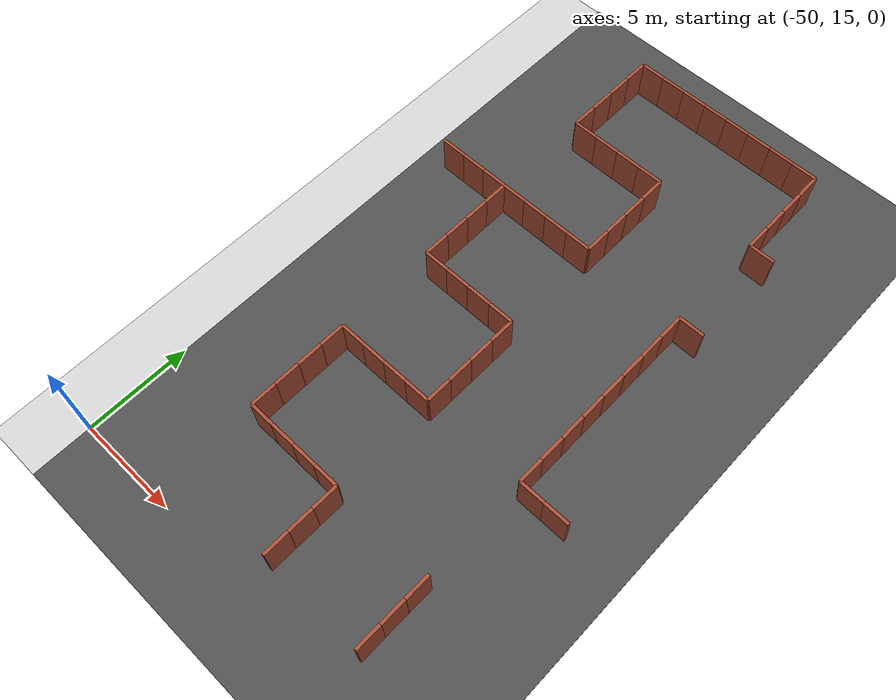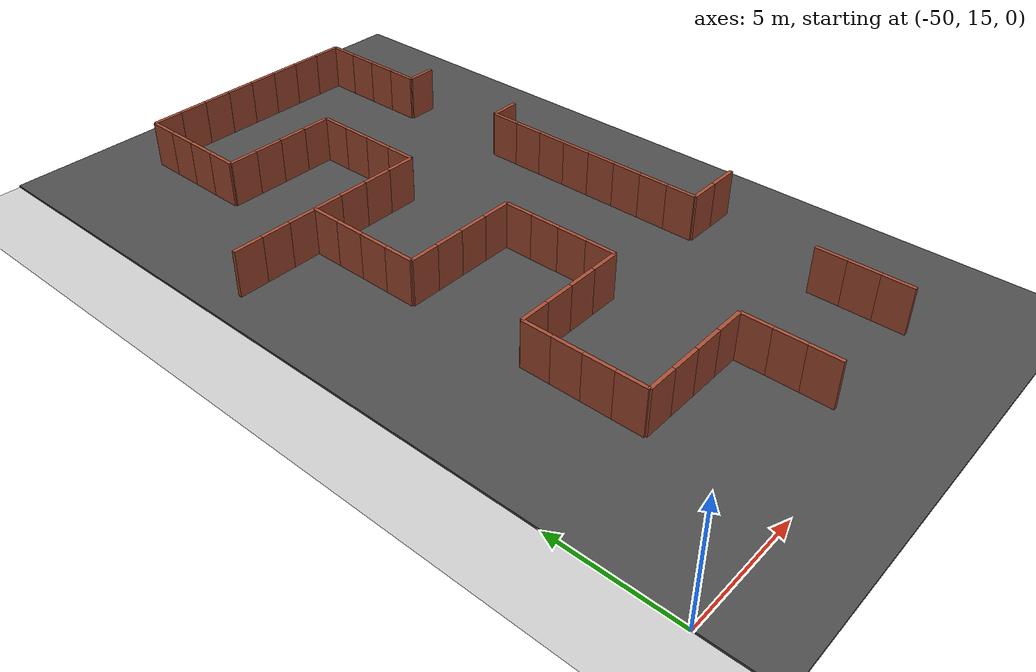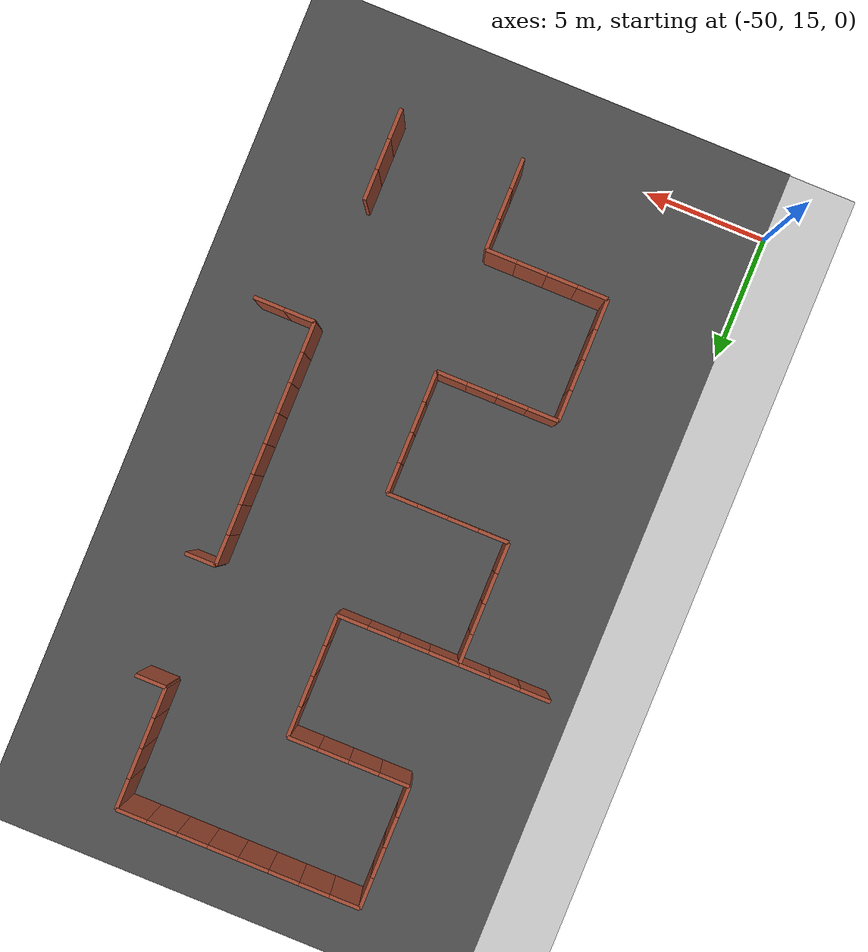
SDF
<sdf version="1.6">
 <world name="default">
  <model name="ground_plane">
   <static>1</static>
   <link name="link">
    <collision name="collision">
     <geometry><plane><normal>0 0 1</normal><size>100 100</size></plane></geometry>
     <surface><friction><ode><mu>100</mu><mu2>50</mu2></ode></friction></surface>
    </collision>
    <visual name="visual">
     <cast_shadows>0</cast_shadows>
     <geometry><plane><normal>0 0 1</normal><size>100 100</size></plane></geometry>
     <material>
      <script><uri>file://media/materials/scripts/gazebo.material</uri><name>Gazebo/Grey</name></script>
     </material>
    </visual>
   </link>
  </model>
  <model name="asphalt_plane">
   <static>1</static>
   <link name="link">
    <collision name="collision"><geometry><box><size>100 100 0.1</size></box></geometry></collision>
    <visual name="visual">
     <cast_shadows>0</cast_shadows>
     <geometry><box><size>100 100 0.1</size></box></geometry>
     <material>
      <script>
       <uri>model://asphalt_plane/materials/scripts</uri>
       <uri>model://asphalt_plane/materials/textures</uri>
       <name>vrc/asphalt</name>
      </script>
     </material>
    </visual>
   </link>
  </model>
  <model name="brick_wall_1_34_vertical1">
   <pose>-46.875 35 0 0 -0 0</pose>
   <link name="Wall_0">
    <collision name="Wall_0_Collision">
     <geometry><box><size>1.25 0.15 2</size></box></geometry>
     <pose>0 0 1 0 -0 0</pose>
    </collision>
    <visual name="Wall_0_Visual">
     <pose>0 0 1 0 -0 0</pose>
     <geometry><box><size>1.25 0.15 2</size></box></geometry>
     <material>
      <script><uri>file://media/materials/scripts/gazebo.material</uri><name>Gazebo/Bricks</name></script>
      <ambient>1 1 1 1</ambient>
     </material>
     <meta><layer>0</layer></meta>
    </visual>
   </link>
   <static>1</static>
  </model>
  <model name="brick_wall_1_34_vertical2">
   <pose>-48.125 35 0 0 -0 0</pose>
   <link name="Wall_0">
    <collision name="Wall_0_Collision">
     <geometry><box><size>1.25 0.15 2</size></box></geometry>
     <pose>0 0 1 0 -0 0</pose>
    </collision>
    <visual name="Wall_0_Visual">
     <pose>0 0 1 0 -0 0</pose>
     <geometry><box><size>1.25 0.15 2</size></box></geometry>
     <material>
      <script><uri>file://media/materials/scripts/gazebo.material</uri><name>Gazebo/Bricks</name></script>
      <ambient>1 1 1 1</ambient>
     </material>
     <meta><layer>0</layer></meta>
    </visual>
   </link>
   <static>1</static>
  </model>
  <model name="brick_wall_2_28_vertical1">
   <pose>-44.375 20 0 0 -0 0</pose>
   <link name="Wall_0">
    <collision name="Wall_0_Collision">
     <geometry><box><size>1.25 0.15 2</size></box></geometry>
     <pose>0 0 1 0 -0 0</pose>
    </collision>
    <visual name="Wall_0_Visual">
     <pose>0 0 1 0 -0 0</pose>
     <geometry><box><size>1.25 0.15 2</size></box></geometry>
     <material>
      <script><uri>file://media/materials/scripts/gazebo.material</uri><name>Gazebo/Bricks</name></script>
      <ambient>1 1 1 1</ambient>
     </material>
     <meta><layer>0</layer></meta>
    </visual>
   </link>
   <static>1</static>
  </model>
  <model name="brick_wall_2_28_horizontal1">
   <pose>-45 20.625 0 0 -0 1.5708</pose>
   <link name="Wall_0">
    <collision name="Wall_0_Collision">
     <geometry><box><size>1.25 0.15 2</size></box></geometry>
     <pose>0 0 1 0 -0 0</pose>
    </collision>
    <visual name="Wall_0_Visual">
     <pose>0 0 1 0 -0 0</pose>
     <geometry><box><size>1.25 0.15 2</size></box></geometry>
     <material>
      <script><uri>file://media/materials/scripts/gazebo.material</uri><name>Gazebo/Bricks</name></script>
      <ambient>1 1 1 1</ambient>
     </material>
     <meta><layer>0</layer></meta>
    </visual>
   </link>
   <static>1</static>
  </model>
  <model name="brick_wall_2_29_horizontal1">
   <pose>-45 23.125 0 0 -0 1.5708</pose>
   <link name="Wall_0">
    <collision name="Wall_0_Collision">
     <geometry><box><size>1.25 0.15 2</size></box></geometry>
     <pose>0 0 1 0 -0 0</pose>
    </collision>
    <visual name="Wall_0_Visual">
     <pose>0 0 1 0 -0 0</pose>
     <geometry><box><size>1.25 0.15 2</size></box></geometry>
     <material>
      <script><uri>file://media/materials/scripts/gazebo.material</uri><name>Gazebo/Bricks</name></script>
      <ambient>1 1 1 1</ambient>
     </material>
     <meta><layer>0</layer></meta>
    </visual>
   </link>
   <static>1</static>
  </model>
  <model name="brick_wall_2_29_horizontal2">
   <pose>-45 21.875 0 0 -0 1.5708</pose>
   <link name="Wall_0">
    <collision name="Wall_0_Collision">
     <geometry><box><size>1.25 0.15 2</size></box></geometry>
     <pose>0 0 1 0 -0 0</pose>
    </collision>
    <visual name="Wall_0_Visual">
     <pose>0 0 1 0 -0 0</pose>
     <geometry><box><size>1.25 0.15 2</size></box></geometry>
     <material>
      <script><uri>file://media/materials/scripts/gazebo.material</uri><name>Gazebo/Bricks</name></script>
      <ambient>1 1 1 1</ambient>
     </material>
     <meta><layer>0</layer></meta>
    </visual>
   </link>
   <static>1</static>
  </model>
  <model name="brick_wall_2_30_vertical1">
   <pose>-44.375 25 0 0 -0 0</pose>
   <link name="Wall_0">
    <collision name="Wall_0_Collision">
     <geometry><box><size>1.25 0.15 2</size></box></geometry>
     <pose>0 0 1 0 -0 0</pose>
    </collision>
    <visual name="Wall_0_Visual">
     <pose>0 0 1 0 -0 0</pose>
     <geometry><box><size>1.25 0.15 2</size></box></geometry>
     <material>
      <script><uri>file://media/materials/scripts/gazebo.material</uri><name>Gazebo/Bricks</name></script>
      <ambient>1 1 1 1</ambient>
     </material>
     <meta><layer>0</layer></meta>
    </visual>
   </link>
   <static>1</static>
  </model>
  <model name="brick_wall_2_30_horizontal2">
   <pose>-45 24.375 0 0 -0 1.5708</pose>
   <link name="Wall_0">
    <collision name="Wall_0_Collision">
     <geometry><box><size>1.25 0.15 2</size></box></geometry>
     <pose>0 0 1 0 -0 0</pose>
    </collision>
    <visual name="Wall_0_Visual">
     <pose>0 0 1 0 -0 0</pose>
     <geometry><box><size>1.25 0.15 2</size></box></geometry>
     <material>
      <script><uri>file://media/materials/scripts/gazebo.material</uri><name>Gazebo/Bricks</name></script>
      <ambient>1 1 1 1</ambient>
     </material>
     <meta><layer>0</layer></meta>
    </visual>
   </link>
   <static>1</static>
  </model>
  <model name="brick_wall_2_32_vertical1">
   <pose>-44.375 30 0 0 -0 0</pose>
   <link name="Wall_0">
    <collision name="Wall_0_Collision">
     <geometry><box><size>1.25 0.15 2</size></box></geometry>
     <pose>0 0 1 0 -0 0</pose>
    </collision>
    <visual name="Wall_0_Visual">
     <pose>0 0 1 0 -0 0</pose>
     <geometry><box><size>1.25 0.15 2</size></box></geometry>
     <material>
      <script><uri>file://media/materials/scripts/gazebo.material</uri><name>Gazebo/Bricks</name></script>
      <ambient>1 1 1 1</ambient>
     </material>
     <meta><layer>0</layer></meta>
    </visual>
   </link>
   <static>1</static>
  </model>
  <model name="brick_wall_2_32_horizontal1">
   <pose>-45 30.625 0 0 -0 1.5708</pose>
   <link name="Wall_0">
    <collision name="Wall_0_Collision">
     <geometry><box><size>1.25 0.15 2</size></box></geometry>
     <pose>0 0 1 0 -0 0</pose>
    </collision>
    <visual name="Wall_0_Visual">
     <pose>0 0 1 0 -0 0</pose>
     <geometry><box><size>1.25 0.15 2</size></box></geometry>
     <material>
      <script><uri>file://media/materials/scripts/gazebo.material</uri><name>Gazebo/Bricks</name></script>
      <ambient>1 1 1 1</ambient>
     </material>
     <meta><layer>0</layer></meta>
    </visual>
   </link>
   <static>1</static>
  </model>
  <model name="brick_wall_2_33_horizontal1">
   <pose>-45 33.125 0 0 -0 1.5708</pose>
   <link name="Wall_0">
    <collision name="Wall_0_Collision">
     <geometry><box><size>1.25 0.15 2</size></box></geometry>
     <pose>0 0 1 0 -0 0</pose>
    </collision>
    <visual name="Wall_0_Visual">
     <pose>0 0 1 0 -0 0</pose>
     <geometry><box><size>1.25 0.15 2</size></box></geometry>
     <material>
      <script><uri>file://media/materials/scripts/gazebo.material</uri><name>Gazebo/Bricks</name></script>
      <ambient>1 1 1 1</ambient>
     </material>
     <meta><layer>0</layer></meta>
    </visual>
   </link>
   <static>1</static>
  </model>
  <model name="brick_wall_2_33_horizontal2">
   <pose>-45 31.875 0 0 -0 1.5708</pose>
   <link name="Wall_0">
    <collision name="Wall_0_Collision">
     <geometry><box><size>1.25 0.15 2</size></box></geometry>
     <pose>0 0 1 0 -0 0</pose>
    </collision>
    <visual name="Wall_0_Visual">
     <pose>0 0 1 0 -0 0</pose>
     <geometry><box><size>1.25 0.15 2</size></box></geometry>
     <material>
      <script><uri>file://media/materials/scripts/gazebo.material</uri><name>Gazebo/Bricks</name></script>
      <ambient>1 1 1 1</ambient>
     </material>
     <meta><layer>0</layer></meta>
    </visual>
   </link>
   <static>1</static>
  </model>
  <model name="brick_wall_2_34_vertical1">
   <pose>-44.375 35 0 0 -0 0</pose>
   <link name="Wall_0">
    <collision name="Wall_0_Collision">
     <geometry><box><size>1.25 0.15 2</size></box></geometry>
     <pose>0 0 1 0 -0 0</pose>
    </collision>
    <visual name="Wall_0_Visual">
     <pose>0 0 1 0 -0 0</pose>
     <geometry><box><size>1.25 0.15 2</size></box></geometry>
     <material>
      <script><uri>file://media/materials/scripts/gazebo.material</uri><name>Gazebo/Bricks</name></script>
      <ambient>1 1 1 1</ambient>
     </material>
     <meta><layer>0</layer></meta>
    </visual>
   </link>
   <static>1</static>
  </model>
  <model name="brick_wall_2_34_vertical2">
   <pose>-45.625 35 0 0 -0 0</pose>
   <link name="Wall_0">
    <collision name="Wall_0_Collision">
     <geometry><box><size>1.25 0.15 2</size></box></geometry>
     <pose>0 0 1 0 -0 0</pose>
    </collision>
    <visual name="Wall_0_Visual">
     <pose>0 0 1 0 -0 0</pose>
     <geometry><box><size>1.25 0.15 2</size></box></geometry>
     <material>
      <script><uri>file://media/materials/scripts/gazebo.material</uri><name>Gazebo/Bricks</name></script>
      <ambient>1 1 1 1</ambient>
     </material>
     <meta><layer>0</layer></meta>
    </visual>
   </link>
   <static>1</static>
  </model>
  <model name="brick_wall_2_34_horizontal2">
   <pose>-45 34.375 0 0 -0 1.5708</pose>
   <link name="Wall_0">
    <collision name="Wall_0_Collision">
     <geometry><box><size>1.25 0.15 2</size></box></geometry>
     <pose>0 0 1 0 -0 0</pose>
    </collision>
    <visual name="Wall_0_Visual">
     <pose>0 0 1 0 -0 0</pose>
     <geometry><box><size>1.25 0.15 2</size></box></geometry>
     <material>
      <script><uri>file://media/materials/scripts/gazebo.material</uri><name>Gazebo/Bricks</name></script>
      <ambient>1 1 1 1</ambient>
     </material>
     <meta><layer>0</layer></meta>
    </visual>
   </link>
   <static>1</static>
  </model>
  <model name="brick_wall_2_36_vertical1">
   <pose>-44.375 40 0 0 -0 0</pose>
   <link name="Wall_0">
    <collision name="Wall_0_Collision">
     <geometry><box><size>1.25 0.15 2</size></box></geometry>
     <pose>0 0 1 0 -0 0</pose>
    </collision>
    <visual name="Wall_0_Visual">
     <pose>0 0 1 0 -0 0</pose>
     <geometry><box><size>1.25 0.15 2</size></box></geometry>
     <material>
      <script><uri>file://media/materials/scripts/gazebo.material</uri><name>Gazebo/Bricks</name></script>
      <ambient>1 1 1 1</ambient>
     </material>
     <meta><layer>0</layer></meta>
    </visual>
   </link>
   <static>1</static>
  </model>
  <model name="brick_wall_2_36_horizontal1">
   <pose>-45 40.625 0 0 -0 1.5708</pose>
   <link name="Wall_0">
    <collision name="Wall_0_Collision">
     <geometry><box><size>1.25 0.15 2</size></box></geometry>
     <pose>0 0 1 0 -0 0</pose>
    </collision>
    <visual name="Wall_0_Visual">
     <pose>0 0 1 0 -0 0</pose>
     <geometry><box><size>1.25 0.15 2</size></box></geometry>
     <material>
      <script><uri>file://media/materials/scripts/gazebo.material</uri><name>Gazebo/Bricks</name></script>
      <ambient>1 1 1 1</ambient>
     </material>
     <meta><layer>0</layer></meta>
    </visual>
   </link>
   <static>1</static>
  </model>
  <model name="brick_wall_2_37_horizontal1">
   <pose>-45 43.125 0 0 -0 1.5708</pose>
   <link name="Wall_0">
    <collision name="Wall_0_Collision">
     <geometry><box><size>1.25 0.15 2</size></box></geometry>
     <pose>0 0 1 0 -0 0</pose>
    </collision>
    <visual name="Wall_0_Visual">
     <pose>0 0 1 0 -0 0</pose>
     <geometry><box><size>1.25 0.15 2</size></box></geometry>
     <material>
      <script><uri>file://media/materials/scripts/gazebo.material</uri><name>Gazebo/Bricks</name></script>
      <ambient>1 1 1 1</ambient>
     </material>
     <meta><layer>0</layer></meta>
    </visual>
   </link>
   <static>1</static>
  </model>
  <model name="brick_wall_2_37_horizontal2">
   <pose>-45 41.875 0 0 -0 1.5708</pose>
   <link name="Wall_0">
    <collision name="Wall_0_Collision">
     <geometry><box><size>1.25 0.15 2</size></box></geometry>
     <pose>0 0 1 0 -0 0</pose>
    </collision>
    <visual name="Wall_0_Visual">
     <pose>0 0 1 0 -0 0</pose>
     <geometry><box><size>1.25 0.15 2</size></box></geometry>
     <material>
      <script><uri>file://media/materials/scripts/gazebo.material</uri><name>Gazebo/Bricks</name></script>
      <ambient>1 1 1 1</ambient>
     </material>
     <meta><layer>0</layer></meta>
    </visual>
   </link>
   <static>1</static>
  </model>
  <model name="brick_wall_2_38_vertical1">
   <pose>-44.375 45 0 0 -0 0</pose>
   <link name="Wall_0">
    <collision name="Wall_0_Collision">
     <geometry><box><size>1.25 0.15 2</size></box></geometry>
     <pose>0 0 1 0 -0 0</pose>
    </collision>
    <visual name="Wall_0_Visual">
     <pose>0 0 1 0 -0 0</pose>
     <geometry><box><size>1.25 0.15 2</size></box></geometry>
     <material>
      <script><uri>file://media/materials/scripts/gazebo.material</uri><name>Gazebo/Bricks</name></script>
      <ambient>1 1 1 1</ambient>
     </material>
     <meta><layer>0</layer></meta>
    </visual>
   </link>
   <static>1</static>
  </model>
  <model name="brick_wall_2_38_horizontal2">
   <pose>-45 44.375 0 0 -0 1.5708</pose>
   <link name="Wall_0">
    <collision name="Wall_0_Collision">
     <geometry><box><size>1.25 0.15 2</size></box></geometry>
     <pose>0 0 1 0 -0 0</pose>
    </collision>
    <visual name="Wall_0_Visual">
     <pose>0 0 1 0 -0 0</pose>
     <geometry><box><size>1.25 0.15 2</size></box></geometry>
     <material>
      <script><uri>file://media/materials/scripts/gazebo.material</uri><name>Gazebo/Bricks</name></script>
      <ambient>1 1 1 1</ambient>
     </material>
     <meta><layer>0</layer></meta>
    </visual>
   </link>
   <static>1</static>
  </model>
  <model name="brick_wall_3_28_vertical1">
   <pose>-41.875 20 0 0 -0 0</pose>
   <link name="Wall_0">
    <collision name="Wall_0_Collision">
     <geometry><box><size>1.25 0.15 2</size></box></geometry>
     <pose>0 0 1 0 -0 0</pose>
    </collision>
    <visual name="Wall_0_Visual">
     <pose>0 0 1 0 -0 0</pose>
     <geometry><box><size>1.25 0.15 2</size></box></geometry>
     <material>
      <script><uri>file://media/materials/scripts/gazebo.material</uri><name>Gazebo/Bricks</name></script>
      <ambient>1 1 1 1</ambient>
     </material>
     <meta><layer>0</layer></meta>
    </visual>
   </link>
   <static>1</static>
  </model>
  <model name="brick_wall_3_28_vertical2">
   <pose>-43.125 20 0 0 -0 0</pose>
   <link name="Wall_0">
    <collision name="Wall_0_Collision">
     <geometry><box><size>1.25 0.15 2</size></box></geometry>
     <pose>0 0 1 0 -0 0</pose>
    </collision>
    <visual name="Wall_0_Visual">
     <pose>0 0 1 0 -0 0</pose>
     <geometry><box><size>1.25 0.15 2</size></box></geometry>
     <material>
      <script><uri>file://media/materials/scripts/gazebo.material</uri><name>Gazebo/Bricks</name></script>
      <ambient>1 1 1 1</ambient>
     </material>
     <meta><layer>0</layer></meta>
    </visual>
   </link>
   <static>1</static>
  </model>
  <model name="brick_wall_3_30_vertical1">
   <pose>-41.875 25 0 0 -0 0</pose>
   <link name="Wall_0">
    <collision name="Wall_0_Collision">
     <geometry><box><size>1.25 0.15 2</size></box></geometry>
     <pose>0 0 1 0 -0 0</pose>
    </collision>
    <visual name="Wall_0_Visual">
     <pose>0 0 1 0 -0 0</pose>
     <geometry><box><size>1.25 0.15 2</size></box></geometry>
     <material>
      <script><uri>file://media/materials/scripts/gazebo.material</uri><name>Gazebo/Bricks</name></script>
      <ambient>1 1 1 1</ambient>
     </material>
     <meta><layer>0</layer></meta>
    </visual>
   </link>
   <static>1</static>
  </model>
  <model name="brick_wall_3_30_vertical2">
   <pose>-43.125 25 0 0 -0 0</pose>
   <link name="Wall_0">
    <collision name="Wall_0_Collision">
     <geometry><box><size>1.25 0.15 2</size></box></geometry>
     <pose>0 0 1 0 -0 0</pose>
    </collision>
    <visual name="Wall_0_Visual">
     <pose>0 0 1 0 -0 0</pose>
     <geometry><box><size>1.25 0.15 2</size></box></geometry>
     <material>
      <script><uri>file://media/materials/scripts/gazebo.material</uri><name>Gazebo/Bricks</name></script>
      <ambient>1 1 1 1</ambient>
     </material>
     <meta><layer>0</layer></meta>
    </visual>
   </link>
   <static>1</static>
  </model>
  <model name="brick_wall_3_32_vertical1">
   <pose>-41.875 30 0 0 -0 0</pose>
   <link name="Wall_0">
    <collision name="Wall_0_Collision">
     <geometry><box><size>1.25 0.15 2</size></box></geometry>
     <pose>0 0 1 0 -0 0</pose>
    </collision>
    <visual name="Wall_0_Visual">
     <pose>0 0 1 0 -0 0</pose>
     <geometry><box><size>1.25 0.15 2</size></box></geometry>
     <material>
      <script><uri>file://media/materials/scripts/gazebo.material</uri><name>Gazebo/Bricks</name></script>
      <ambient>1 1 1 1</ambient>
     </material>
     <meta><layer>0</layer></meta>
    </visual>
   </link>
   <static>1</static>
  </model>
  <model name="brick_wall_3_32_vertical2">
   <pose>-43.125 30 0 0 -0 0</pose>
   <link name="Wall_0">
    <collision name="Wall_0_Collision">
     <geometry><box><size>1.25 0.15 2</size></box></geometry>
     <pose>0 0 1 0 -0 0</pose>
    </collision>
    <visual name="Wall_0_Visual">
     <pose>0 0 1 0 -0 0</pose>
     <geometry><box><size>1.25 0.15 2</size></box></geometry>
     <material>
      <script><uri>file://media/materials/scripts/gazebo.material</uri><name>Gazebo/Bricks</name></script>
      <ambient>1 1 1 1</ambient>
     </material>
     <meta><layer>0</layer></meta>
    </visual>
   </link>
   <static>1</static>
  </model>
  <model name="brick_wall_3_34_vertical1">
   <pose>-41.875 35 0 0 -0 0</pose>
   <link name="Wall_0">
    <collision name="Wall_0_Collision">
     <geometry><box><size>1.25 0.15 2</size></box></geometry>
     <pose>0 0 1 0 -0 0</pose>
    </collision>
    <visual name="Wall_0_Visual">
     <pose>0 0 1 0 -0 0</pose>
     <geometry><box><size>1.25 0.15 2</size></box></geometry>
     <material>
      <script><uri>file://media/materials/scripts/gazebo.material</uri><name>Gazebo/Bricks</name></script>
      <ambient>1 1 1 1</ambient>
     </material>
     <meta><layer>0</layer></meta>
    </visual>
   </link>
   <static>1</static>
  </model>
  <model name="brick_wall_3_34_vertical2">
   <pose>-43.125 35 0 0 -0 0</pose>
   <link name="Wall_0">
    <collision name="Wall_0_Collision">
     <geometry><box><size>1.25 0.15 2</size></box></geometry>
     <pose>0 0 1 0 -0 0</pose>
    </collision>
    <visual name="Wall_0_Visual">
     <pose>0 0 1 0 -0 0</pose>
     <geometry><box><size>1.25 0.15 2</size></box></geometry>
     <material>
      <script><uri>file://media/materials/scripts/gazebo.material</uri><name>Gazebo/Bricks</name></script>
      <ambient>1 1 1 1</ambient>
     </material>
     <meta><layer>0</layer></meta>
    </visual>
   </link>
   <static>1</static>
  </model>
  <model name="brick_wall_3_36_vertical1">
   <pose>-41.875 40 0 0 -0 0</pose>
   <link name="Wall_0">
    <collision name="Wall_0_Collision">
     <geometry><box><size>1.25 0.15 2</size></box></geometry>
     <pose>0 0 1 0 -0 0</pose>
    </collision>
    <visual name="Wall_0_Visual">
     <pose>0 0 1 0 -0 0</pose>
     <geometry><box><size>1.25 0.15 2</size></box></geometry>
     <material>
      <script><uri>file://media/materials/scripts/gazebo.material</uri><name>Gazebo/Bricks</name></script>
      <ambient>1 1 1 1</ambient>
     </material>
     <meta><layer>0</layer></meta>
    </visual>
   </link>
   <static>1</static>
  </model>
  <model name="brick_wall_3_36_vertical2">
   <pose>-43.125 40 0 0 -0 0</pose>
   <link name="Wall_0">
    <collision name="Wall_0_Collision">
     <geometry><box><size>1.25 0.15 2</size></box></geometry>
     <pose>0 0 1 0 -0 0</pose>
    </collision>
    <visual name="Wall_0_Visual">
     <pose>0 0 1 0 -0 0</pose>
     <geometry><box><size>1.25 0.15 2</size></box></geometry>
     <material>
      <script><uri>file://media/materials/scripts/gazebo.material</uri><name>Gazebo/Bricks</name></script>
      <ambient>1 1 1 1</ambient>
     </material>
     <meta><layer>0</layer></meta>
    </visual>
   </link>
   <static>1</static>
  </model>
  <model name="brick_wall_3_38_vertical1">
   <pose>-41.875 45 0 0 -0 0</pose>
   <link name="Wall_0">
    <collision name="Wall_0_Collision">
     <geometry><box><size>1.25 0.15 2</size></box></geometry>
     <pose>0 0 1 0 -0 0</pose>
    </collision>
    <visual name="Wall_0_Visual">
     <pose>0 0 1 0 -0 0</pose>
     <geometry><box><size>1.25 0.15 2</size></box></geometry>
     <material>
      <script><uri>file://media/materials/scripts/gazebo.material</uri><name>Gazebo/Bricks</name></script>
      <ambient>1 1 1 1</ambient>
     </material>
     <meta><layer>0</layer></meta>
    </visual>
   </link>
   <static>1</static>
  </model>
  <model name="brick_wall_3_38_vertical2">
   <pose>-43.125 45 0 0 -0 0</pose>
   <link name="Wall_0">
    <collision name="Wall_0_Collision">
     <geometry><box><size>1.25 0.15 2</size></box></geometry>
     <pose>0 0 1 0 -0 0</pose>
    </collision>
    <visual name="Wall_0_Visual">
     <pose>0 0 1 0 -0 0</pose>
     <geometry><box><size>1.25 0.15 2</size></box></geometry>
     <material>
      <script><uri>file://media/materials/scripts/gazebo.material</uri><name>Gazebo/Bricks</name></script>
      <ambient>1 1 1 1</ambient>
     </material>
     <meta><layer>0</layer></meta>
    </visual>
   </link>
   <static>1</static>
  </model>
  <model name="brick_wall_4_27_horizontal1">
   <pose>-40 18.125 0 0 -0 1.5708</pose>
   <link name="Wall_0">
    <collision name="Wall_0_Collision">
     <geometry><box><size>1.25 0.15 2</size></box></geometry>
     <pose>0 0 1 0 -0 0</pose>
    </collision>
    <visual name="Wall_0_Visual">
     <pose>0 0 1 0 -0 0</pose>
     <geometry><box><size>1.25 0.15 2</size></box></geometry>
     <material>
      <script><uri>file://media/materials/scripts/gazebo.material</uri><name>Gazebo/Bricks</name></script>
      <ambient>1 1 1 1</ambient>
     </material>
     <meta><layer>0</layer></meta>
    </visual>
   </link>
   <static>1</static>
  </model>
  <model name="brick_wall_4_27_horizontal2">
   <pose>-40 16.875 0 0 -0 1.5708</pose>
   <link name="Wall_0">
    <collision name="Wall_0_Collision">
     <geometry><box><size>1.25 0.15 2</size></box></geometry>
     <pose>0 0 1 0 -0 0</pose>
    </collision>
    <visual name="Wall_0_Visual">
     <pose>0 0 1 0 -0 0</pose>
     <geometry><box><size>1.25 0.15 2</size></box></geometry>
     <material>
      <script><uri>file://media/materials/scripts/gazebo.material</uri><name>Gazebo/Bricks</name></script>
      <ambient>1 1 1 1</ambient>
     </material>
     <meta><layer>0</layer></meta>
    </visual>
   </link>
   <static>1</static>
  </model>
  <model name="brick_wall_4_28_vertical2">
   <pose>-40.625 20 0 0 -0 0</pose>
   <link name="Wall_0">
    <collision name="Wall_0_Collision">
     <geometry><box><size>1.25 0.15 2</size></box></geometry>
     <pose>0 0 1 0 -0 0</pose>
    </collision>
    <visual name="Wall_0_Visual">
     <pose>0 0 1 0 -0 0</pose>
     <geometry><box><size>1.25 0.15 2</size></box></geometry>
     <material>
      <script><uri>file://media/materials/scripts/gazebo.material</uri><name>Gazebo/Bricks</name></script>
      <ambient>1 1 1 1</ambient>
     </material>
     <meta><layer>0</layer></meta>
    </visual>
   </link>
   <static>1</static>
  </model>
  <model name="brick_wall_4_28_horizontal2">
   <pose>-40 19.375 0 0 -0 1.5708</pose>
   <link name="Wall_0">
    <collision name="Wall_0_Collision">
     <geometry><box><size>1.25 0.15 2</size></box></geometry>
     <pose>0 0 1 0 -0 0</pose>
    </collision>
    <visual name="Wall_0_Visual">
     <pose>0 0 1 0 -0 0</pose>
     <geometry><box><size>1.25 0.15 2</size></box></geometry>
     <material>
      <script><uri>file://media/materials/scripts/gazebo.material</uri><name>Gazebo/Bricks</name></script>
      <ambient>1 1 1 1</ambient>
     </material>
     <meta><layer>0</layer></meta>
    </visual>
   </link>
   <static>1</static>
  </model>
  <model name="brick_wall_4_30_vertical2">
   <pose>-40.625 25 0 0 -0 0</pose>
   <link name="Wall_0">
    <collision name="Wall_0_Collision">
     <geometry><box><size>1.25 0.15 2</size></box></geometry>
     <pose>0 0 1 0 -0 0</pose>
    </collision>
    <visual name="Wall_0_Visual">
     <pose>0 0 1 0 -0 0</pose>
     <geometry><box><size>1.25 0.15 2</size></box></geometry>
     <material>
      <script><uri>file://media/materials/scripts/gazebo.material</uri><name>Gazebo/Bricks</name></script>
      <ambient>1 1 1 1</ambient>
     </material>
     <meta><layer>0</layer></meta>
    </visual>
   </link>
   <static>1</static>
  </model>
  <model name="brick_wall_4_30_horizontal1">
   <pose>-40 25.625 0 0 -0 1.5708</pose>
   <link name="Wall_0">
    <collision name="Wall_0_Collision">
     <geometry><box><size>1.25 0.15 2</size></box></geometry>
     <pose>0 0 1 0 -0 0</pose>
    </collision>
    <visual name="Wall_0_Visual">
     <pose>0 0 1 0 -0 0</pose>
     <geometry><box><size>1.25 0.15 2</size></box></geometry>
     <material>
      <script><uri>file://media/materials/scripts/gazebo.material</uri><name>Gazebo/Bricks</name></script>
      <ambient>1 1 1 1</ambient>
     </material>
     <meta><layer>0</layer></meta>
    </visual>
   </link>
   <static>1</static>
  </model>
  <model name="brick_wall_4_31_horizontal1">
   <pose>-40 28.125 0 0 -0 1.5708</pose>
   <link name="Wall_0">
    <collision name="Wall_0_Collision">
     <geometry><box><size>1.25 0.15 2</size></box></geometry>
     <pose>0 0 1 0 -0 0</pose>
    </collision>
    <visual name="Wall_0_Visual">
     <pose>0 0 1 0 -0 0</pose>
     <geometry><box><size>1.25 0.15 2</size></box></geometry>
     <material>
      <script><uri>file://media/materials/scripts/gazebo.material</uri><name>Gazebo/Bricks</name></script>
      <ambient>1 1 1 1</ambient>
     </material>
     <meta><layer>0</layer></meta>
    </visual>
   </link>
   <static>1</static>
  </model>
  <model name="brick_wall_4_31_horizontal2">
   <pose>-40 26.875 0 0 -0 1.5708</pose>
   <link name="Wall_0">
    <collision name="Wall_0_Collision">
     <geometry><box><size>1.25 0.15 2</size></box></geometry>
     <pose>0 0 1 0 -0 0</pose>
    </collision>
    <visual name="Wall_0_Visual">
     <pose>0 0 1 0 -0 0</pose>
     <geometry><box><size>1.25 0.15 2</size></box></geometry>
     <material>
      <script><uri>file://media/materials/scripts/gazebo.material</uri><name>Gazebo/Bricks</name></script>
      <ambient>1 1 1 1</ambient>
     </material>
     <meta><layer>0</layer></meta>
    </visual>
   </link>
   <static>1</static>
  </model>
  <model name="brick_wall_4_32_vertical2">
   <pose>-40.625 30 0 0 -0 0</pose>
   <link name="Wall_0">
    <collision name="Wall_0_Collision">
     <geometry><box><size>1.25 0.15 2</size></box></geometry>
     <pose>0 0 1 0 -0 0</pose>
    </collision>
    <visual name="Wall_0_Visual">
     <pose>0 0 1 0 -0 0</pose>
     <geometry><box><size>1.25 0.15 2</size></box></geometry>
     <material>
      <script><uri>file://media/materials/scripts/gazebo.material</uri><name>Gazebo/Bricks</name></script>
      <ambient>1 1 1 1</ambient>
     </material>
     <meta><layer>0</layer></meta>
    </visual>
   </link>
   <static>1</static>
  </model>
  <model name="brick_wall_4_32_horizontal2">
   <pose>-40 29.375 0 0 -0 1.5708</pose>
   <link name="Wall_0">
    <collision name="Wall_0_Collision">
     <geometry><box><size>1.25 0.15 2</size></box></geometry>
     <pose>0 0 1 0 -0 0</pose>
    </collision>
    <visual name="Wall_0_Visual">
     <pose>0 0 1 0 -0 0</pose>
     <geometry><box><size>1.25 0.15 2</size></box></geometry>
     <material>
      <script><uri>file://media/materials/scripts/gazebo.material</uri><name>Gazebo/Bricks</name></script>
      <ambient>1 1 1 1</ambient>
     </material>
     <meta><layer>0</layer></meta>
    </visual>
   </link>
   <static>1</static>
  </model>
  <model name="brick_wall_4_34_vertical2">
   <pose>-40.625 35 0 0 -0 0</pose>
   <link name="Wall_0">
    <collision name="Wall_0_Collision">
     <geometry><box><size>1.25 0.15 2</size></box></geometry>
     <pose>0 0 1 0 -0 0</pose>
    </collision>
    <visual name="Wall_0_Visual">
     <pose>0 0 1 0 -0 0</pose>
     <geometry><box><size>1.25 0.15 2</size></box></geometry>
     <material>
      <script><uri>file://media/materials/scripts/gazebo.material</uri><name>Gazebo/Bricks</name></script>
      <ambient>1 1 1 1</ambient>
     </material>
     <meta><layer>0</layer></meta>
    </visual>
   </link>
   <static>1</static>
  </model>
  <model name="brick_wall_4_34_horizontal1">
   <pose>-40 35.625 0 0 -0 1.5708</pose>
   <link name="Wall_0">
    <collision name="Wall_0_Collision">
     <geometry><box><size>1.25 0.15 2</size></box></geometry>
     <pose>0 0 1 0 -0 0</pose>
    </collision>
    <visual name="Wall_0_Visual">
     <pose>0 0 1 0 -0 0</pose>
     <geometry><box><size>1.25 0.15 2</size></box></geometry>
     <material>
      <script><uri>file://media/materials/scripts/gazebo.material</uri><name>Gazebo/Bricks</name></script>
      <ambient>1 1 1 1</ambient>
     </material>
     <meta><layer>0</layer></meta>
    </visual>
   </link>
   <static>1</static>
  </model>
  <model name="brick_wall_4_35_horizontal1">
   <pose>-40 38.125 0 0 -0 1.5708</pose>
   <link name="Wall_0">
    <collision name="Wall_0_Collision">
     <geometry><box><size>1.25 0.15 2</size></box></geometry>
     <pose>0 0 1 0 -0 0</pose>
    </collision>
    <visual name="Wall_0_Visual">
     <pose>0 0 1 0 -0 0</pose>
     <geometry><box><size>1.25 0.15 2</size></box></geometry>
     <material>
      <script><uri>file://media/materials/scripts/gazebo.material</uri><name>Gazebo/Bricks</name></script>
      <ambient>1 1 1 1</ambient>
     </material>
     <meta><layer>0</layer></meta>
    </visual>
   </link>
   <static>1</static>
  </model>
  <model name="brick_wall_4_35_horizontal2">
   <pose>-40 36.875 0 0 -0 1.5708</pose>
   <link name="Wall_0">
    <collision name="Wall_0_Collision">
     <geometry><box><size>1.25 0.15 2</size></box></geometry>
     <pose>0 0 1 0 -0 0</pose>
    </collision>
    <visual name="Wall_0_Visual">
     <pose>0 0 1 0 -0 0</pose>
     <geometry><box><size>1.25 0.15 2</size></box></geometry>
     <material>
      <script><uri>file://media/materials/scripts/gazebo.material</uri><name>Gazebo/Bricks</name></script>
      <ambient>1 1 1 1</ambient>
     </material>
     <meta><layer>0</layer></meta>
    </visual>
   </link>
   <static>1</static>
  </model>
  <model name="brick_wall_4_36_vertical2">
   <pose>-40.625 40 0 0 -0 0</pose>
   <link name="Wall_0">
    <collision name="Wall_0_Collision">
     <geometry><box><size>1.25 0.15 2</size></box></geometry>
     <pose>0 0 1 0 -0 0</pose>
    </collision>
    <visual name="Wall_0_Visual">
     <pose>0 0 1 0 -0 0</pose>
     <geometry><box><size>1.25 0.15 2</size></box></geometry>
     <material>
      <script><uri>file://media/materials/scripts/gazebo.material</uri><name>Gazebo/Bricks</name></script>
      <ambient>1 1 1 1</ambient>
     </material>
     <meta><layer>0</layer></meta>
    </visual>
   </link>
   <static>1</static>
  </model>
  <model name="brick_wall_4_36_horizontal2">
   <pose>-40 39.375 0 0 -0 1.5708</pose>
   <link name="Wall_0">
    <collision name="Wall_0_Collision">
     <geometry><box><size>1.25 0.15 2</size></box></geometry>
     <pose>0 0 1 0 -0 0</pose>
    </collision>
    <visual name="Wall_0_Visual">
     <pose>0 0 1 0 -0 0</pose>
     <geometry><box><size>1.25 0.15 2</size></box></geometry>
     <material>
      <script><uri>file://media/materials/scripts/gazebo.material</uri><name>Gazebo/Bricks</name></script>
      <ambient>1 1 1 1</ambient>
     </material>
     <meta><layer>0</layer></meta>
    </visual>
   </link>
   <static>1</static>
  </model>
  <model name="brick_wall_4_38_vertical1">
   <pose>-39.375 45 0 0 -0 0</pose>
   <link name="Wall_0">
    <collision name="Wall_0_Collision">
     <geometry><box><size>1.25 0.15 2</size></box></geometry>
     <pose>0 0 1 0 -0 0</pose>
    </collision>
    <visual name="Wall_0_Visual">
     <pose>0 0 1 0 -0 0</pose>
     <geometry><box><size>1.25 0.15 2</size></box></geometry>
     <material>
      <script><uri>file://media/materials/scripts/gazebo.material</uri><name>Gazebo/Bricks</name></script>
      <ambient>1 1 1 1</ambient>
     </material>
     <meta><layer>0</layer></meta>
    </visual>
   </link>
   <static>1</static>
  </model>
  <model name="brick_wall_4_38_vertical2">
   <pose>-40.625 45 0 0 -0 0</pose>
   <link name="Wall_0">
    <collision name="Wall_0_Collision">
     <geometry><box><size>1.25 0.15 2</size></box></geometry>
     <pose>0 0 1 0 -0 0</pose>
    </collision>
    <visual name="Wall_0_Visual">
     <pose>0 0 1 0 -0 0</pose>
     <geometry><box><size>1.25 0.15 2</size></box></geometry>
     <material>
      <script><uri>file://media/materials/scripts/gazebo.material</uri><name>Gazebo/Bricks</name></script>
      <ambient>1 1 1 1</ambient>
     </material>
     <meta><layer>0</layer></meta>
    </visual>
   </link>
   <static>1</static>
  </model>
  <model name="brick_wall_5_38_vertical1">
   <pose>-36.875 45 0 0 -0 0</pose>
   <link name="Wall_0">
    <collision name="Wall_0_Collision">
     <geometry><box><size>1.25 0.15 2</size></box></geometry>
     <pose>0 0 1 0 -0 0</pose>
    </collision>
    <visual name="Wall_0_Visual">
     <pose>0 0 1 0 -0 0</pose>
     <geometry><box><size>1.25 0.15 2</size></box></geometry>
     <material>
      <script><uri>file://media/materials/scripts/gazebo.material</uri><name>Gazebo/Bricks</name></script>
      <ambient>1 1 1 1</ambient>
     </material>
     <meta><layer>0</layer></meta>
    </visual>
   </link>
   <static>1</static>
  </model>
  <model name="brick_wall_5_38_vertical2">
   <pose>-38.125 45 0 0 -0 0</pose>
   <link name="Wall_0">
    <collision name="Wall_0_Collision">
     <geometry><box><size>1.25 0.15 2</size></box></geometry>
     <pose>0 0 1 0 -0 0</pose>
    </collision>
    <visual name="Wall_0_Visual">
     <pose>0 0 1 0 -0 0</pose>
     <geometry><box><size>1.25 0.15 2</size></box></geometry>
     <material>
      <script><uri>file://media/materials/scripts/gazebo.material</uri><name>Gazebo/Bricks</name></script>
      <ambient>1 1 1 1</ambient>
     </material>
     <meta><layer>0</layer></meta>
    </visual>
   </link>
   <static>1</static>
  </model>
  <model name="brick_wall_6_27_horizontal1">
   <pose>-35 18.125 0 0 -0 1.5708</pose>
   <link name="Wall_0">
    <collision name="Wall_0_Collision">
     <geometry><box><size>1.25 0.15 2</size></box></geometry>
     <pose>0 0 1 0 -0 0</pose>
    </collision>
    <visual name="Wall_0_Visual">
     <pose>0 0 1 0 -0 0</pose>
     <geometry><box><size>1.25 0.15 2</size></box></geometry>
     <material>
      <script><uri>file://media/materials/scripts/gazebo.material</uri><name>Gazebo/Bricks</name></script>
      <ambient>1 1 1 1</ambient>
     </material>
     <meta><layer>0</layer></meta>
    </visual>
   </link>
   <static>1</static>
  </model>
  <model name="brick_wall_6_27_horizontal2">
   <pose>-35 16.875 0 0 -0 1.5708</pose>
   <link name="Wall_0">
    <collision name="Wall_0_Collision">
     <geometry><box><size>1.25 0.15 2</size></box></geometry>
     <pose>0 0 1 0 -0 0</pose>
    </collision>
    <visual name="Wall_0_Visual">
     <pose>0 0 1 0 -0 0</pose>
     <geometry><box><size>1.25 0.15 2</size></box></geometry>
     <material>
      <script><uri>file://media/materials/scripts/gazebo.material</uri><name>Gazebo/Bricks</name></script>
      <ambient>1 1 1 1</ambient>
     </material>
     <meta><layer>0</layer></meta>
    </visual>
   </link>
   <static>1</static>
  </model>
  <model name="brick_wall_6_28_horizontal2">
   <pose>-35 19.375 0 0 -0 1.5708</pose>
   <link name="Wall_0">
    <collision name="Wall_0_Collision">
     <geometry><box><size>1.25 0.15 2</size></box></geometry>
     <pose>0 0 1 0 -0 0</pose>
    </collision>
    <visual name="Wall_0_Visual">
     <pose>0 0 1 0 -0 0</pose>
     <geometry><box><size>1.25 0.15 2</size></box></geometry>
     <material>
      <script><uri>file://media/materials/scripts/gazebo.material</uri><name>Gazebo/Bricks</name></script>
      <ambient>1 1 1 1</ambient>
     </material>
     <meta><layer>0</layer></meta>
    </visual>
   </link>
   <static>1</static>
  </model>
  <model name="brick_wall_6_30_vertical1">
   <pose>-34.375 25 0 0 -0 0</pose>
   <link name="Wall_0">
    <collision name="Wall_0_Collision">
     <geometry><box><size>1.25 0.15 2</size></box></geometry>
     <pose>0 0 1 0 -0 0</pose>
    </collision>
    <visual name="Wall_0_Visual">
     <pose>0 0 1 0 -0 0</pose>
     <geometry><box><size>1.25 0.15 2</size></box></geometry>
     <material>
      <script><uri>file://media/materials/scripts/gazebo.material</uri><name>Gazebo/Bricks</name></script>
      <ambient>1 1 1 1</ambient>
     </material>
     <meta><layer>0</layer></meta>
    </visual>
   </link>
   <static>1</static>
  </model>
  <model name="brick_wall_6_30_horizontal1">
   <pose>-35 25.625 0 0 -0 1.5708</pose>
   <link name="Wall_0">
    <collision name="Wall_0_Collision">
     <geometry><box><size>1.25 0.15 2</size></box></geometry>
     <pose>0 0 1 0 -0 0</pose>
    </collision>
    <visual name="Wall_0_Visual">
     <pose>0 0 1 0 -0 0</pose>
     <geometry><box><size>1.25 0.15 2</size></box></geometry>
     <material>
      <script><uri>file://media/materials/scripts/gazebo.material</uri><name>Gazebo/Bricks</name></script>
      <ambient>1 1 1 1</ambient>
     </material>
     <meta><layer>0</layer></meta>
    </visual>
   </link>
   <static>1</static>
  </model>
  <model name="brick_wall_6_31_horizontal1">
   <pose>-35 28.125 0 0 -0 1.5708</pose>
   <link name="Wall_0">
    <collision name="Wall_0_Collision">
     <geometry><box><size>1.25 0.15 2</size></box></geometry>
     <pose>0 0 1 0 -0 0</pose>
    </collision>
    <visual name="Wall_0_Visual">
     <pose>0 0 1 0 -0 0</pose>
     <geometry><box><size>1.25 0.15 2</size></box></geometry>
     <material>
      <script><uri>file://media/materials/scripts/gazebo.material</uri><name>Gazebo/Bricks</name></script>
      <ambient>1 1 1 1</ambient>
     </material>
     <meta><layer>0</layer></meta>
    </visual>
   </link>
   <static>1</static>
  </model>
  <model name="brick_wall_6_31_horizontal2">
   <pose>-35 26.875 0 0 -0 1.5708</pose>
   <link name="Wall_0">
    <collision name="Wall_0_Collision">
     <geometry><box><size>1.25 0.15 2</size></box></geometry>
     <pose>0 0 1 0 -0 0</pose>
    </collision>
    <visual name="Wall_0_Visual">
     <pose>0 0 1 0 -0 0</pose>
     <geometry><box><size>1.25 0.15 2</size></box></geometry>
     <material>
      <script><uri>file://media/materials/scripts/gazebo.material</uri><name>Gazebo/Bricks</name></script>
      <ambient>1 1 1 1</ambient>
     </material>
     <meta><layer>0</layer></meta>
    </visual>
   </link>
   <static>1</static>
  </model>
  <model name="brick_wall_6_32_horizontal1">
   <pose>-35 30.625 0 0 -0 1.5708</pose>
   <link name="Wall_0">
    <collision name="Wall_0_Collision">
     <geometry><box><size>1.25 0.15 2</size></box></geometry>
     <pose>0 0 1 0 -0 0</pose>
    </collision>
    <visual name="Wall_0_Visual">
     <pose>0 0 1 0 -0 0</pose>
     <geometry><box><size>1.25 0.15 2</size></box></geometry>
     <material>
      <script><uri>file://media/materials/scripts/gazebo.material</uri><name>Gazebo/Bricks</name></script>
      <ambient>1 1 1 1</ambient>
     </material>
     <meta><layer>0</layer></meta>
    </visual>
   </link>
   <static>1</static>
  </model>
  <model name="brick_wall_6_32_horizontal2">
   <pose>-35 29.375 0 0 -0 1.5708</pose>
   <link name="Wall_0">
    <collision name="Wall_0_Collision">
     <geometry><box><size>1.25 0.15 2</size></box></geometry>
     <pose>0 0 1 0 -0 0</pose>
    </collision>
    <visual name="Wall_0_Visual">
     <pose>0 0 1 0 -0 0</pose>
     <geometry><box><size>1.25 0.15 2</size></box></geometry>
     <material>
      <script><uri>file://media/materials/scripts/gazebo.material</uri><name>Gazebo/Bricks</name></script>
      <ambient>1 1 1 1</ambient>
     </material>
     <meta><layer>0</layer></meta>
    </visual>
   </link>
   <static>1</static>
  </model>
  <model name="brick_wall_6_33_horizontal1">
   <pose>-35 33.125 0 0 -0 1.5708</pose>
   <link name="Wall_0">
    <collision name="Wall_0_Collision">
     <geometry><box><size>1.25 0.15 2</size></box></geometry>
     <pose>0 0 1 0 -0 0</pose>
    </collision>
    <visual name="Wall_0_Visual">
     <pose>0 0 1 0 -0 0</pose>
     <geometry><box><size>1.25 0.15 2</size></box></geometry>
     <material>
      <script><uri>file://media/materials/scripts/gazebo.material</uri><name>Gazebo/Bricks</name></script>
      <ambient>1 1 1 1</ambient>
     </material>
     <meta><layer>0</layer></meta>
    </visual>
   </link>
   <static>1</static>
  </model>
  <model name="brick_wall_6_33_horizontal2">
   <pose>-35 31.875 0 0 -0 1.5708</pose>
   <link name="Wall_0">
    <collision name="Wall_0_Collision">
     <geometry><box><size>1.25 0.15 2</size></box></geometry>
     <pose>0 0 1 0 -0 0</pose>
    </collision>
    <visual name="Wall_0_Visual">
     <pose>0 0 1 0 -0 0</pose>
     <geometry><box><size>1.25 0.15 2</size></box></geometry>
     <material>
      <script><uri>file://media/materials/scripts/gazebo.material</uri><name>Gazebo/Bricks</name></script>
      <ambient>1 1 1 1</ambient>
     </material>
     <meta><layer>0</layer></meta>
    </visual>
   </link>
   <static>1</static>
  </model>
  <model name="brick_wall_6_34_vertical1">
   <pose>-34.375 35 0 0 -0 0</pose>
   <link name="Wall_0">
    <collision name="Wall_0_Collision">
     <geometry><box><size>1.25 0.15 2</size></box></geometry>
     <pose>0 0 1 0 -0 0</pose>
    </collision>
    <visual name="Wall_0_Visual">
     <pose>0 0 1 0 -0 0</pose>
     <geometry><box><size>1.25 0.15 2</size></box></geometry>
     <material>
      <script><uri>file://media/materials/scripts/gazebo.material</uri><name>Gazebo/Bricks</name></script>
      <ambient>1 1 1 1</ambient>
     </material>
     <meta><layer>0</layer></meta>
    </visual>
   </link>
   <static>1</static>
  </model>
  <model name="brick_wall_6_34_horizontal2">
   <pose>-35 34.375 0 0 -0 1.5708</pose>
   <link name="Wall_0">
    <collision name="Wall_0_Collision">
     <geometry><box><size>1.25 0.15 2</size></box></geometry>
     <pose>0 0 1 0 -0 0</pose>
    </collision>
    <visual name="Wall_0_Visual">
     <pose>0 0 1 0 -0 0</pose>
     <geometry><box><size>1.25 0.15 2</size></box></geometry>
     <material>
      <script><uri>file://media/materials/scripts/gazebo.material</uri><name>Gazebo/Bricks</name></script>
      <ambient>1 1 1 1</ambient>
     </material>
     <meta><layer>0</layer></meta>
    </visual>
   </link>
   <static>1</static>
  </model>
  <model name="brick_wall_6_36_vertical1">
   <pose>-34.375 40 0 0 -0 0</pose>
   <link name="Wall_0">
    <collision name="Wall_0_Collision">
     <geometry><box><size>1.25 0.15 2</size></box></geometry>
     <pose>0 0 1 0 -0 0</pose>
    </collision>
    <visual name="Wall_0_Visual">
     <pose>0 0 1 0 -0 0</pose>
     <geometry><box><size>1.25 0.15 2</size></box></geometry>
     <material>
      <script><uri>file://media/materials/scripts/gazebo.material</uri><name>Gazebo/Bricks</name></script>
      <ambient>1 1 1 1</ambient>
     </material>
     <meta><layer>0</layer></meta>
    </visual>
   </link>
   <static>1</static>
  </model>
  <model name="brick_wall_6_36_horizontal1">
   <pose>-35 40.625 0 0 -0 1.5708</pose>
   <link name="Wall_0">
    <collision name="Wall_0_Collision">
     <geometry><box><size>1.25 0.15 2</size></box></geometry>
     <pose>0 0 1 0 -0 0</pose>
    </collision>
    <visual name="Wall_0_Visual">
     <pose>0 0 1 0 -0 0</pose>
     <geometry><box><size>1.25 0.15 2</size></box></geometry>
     <material>
      <script><uri>file://media/materials/scripts/gazebo.material</uri><name>Gazebo/Bricks</name></script>
      <ambient>1 1 1 1</ambient>
     </material>
     <meta><layer>0</layer></meta>
    </visual>
   </link>
   <static>1</static>
  </model>
  <model name="brick_wall_6_37_horizontal1">
   <pose>-35 43.125 0 0 -0 1.5708</pose>
   <link name="Wall_0">
    <collision name="Wall_0_Collision">
     <geometry><box><size>1.25 0.15 2</size></box></geometry>
     <pose>0 0 1 0 -0 0</pose>
    </collision>
    <visual name="Wall_0_Visual">
     <pose>0 0 1 0 -0 0</pose>
     <geometry><box><size>1.25 0.15 2</size></box></geometry>
     <material>
      <script><uri>file://media/materials/scripts/gazebo.material</uri><name>Gazebo/Bricks</name></script>
      <ambient>1 1 1 1</ambient>
     </material>
     <meta><layer>0</layer></meta>
    </visual>
   </link>
   <static>1</static>
  </model>
  <model name="brick_wall_6_37_horizontal2">
   <pose>-35 41.875 0 0 -0 1.5708</pose>
   <link name="Wall_0">
    <collision name="Wall_0_Collision">
     <geometry><box><size>1.25 0.15 2</size></box></geometry>
     <pose>0 0 1 0 -0 0</pose>
    </collision>
    <visual name="Wall_0_Visual">
     <pose>0 0 1 0 -0 0</pose>
     <geometry><box><size>1.25 0.15 2</size></box></geometry>
     <material>
      <script><uri>file://media/materials/scripts/gazebo.material</uri><name>Gazebo/Bricks</name></script>
      <ambient>1 1 1 1</ambient>
     </material>
     <meta><layer>0</layer></meta>
    </visual>
   </link>
   <static>1</static>
  </model>
  <model name="brick_wall_6_38_vertical2">
   <pose>-35.625 45 0 0 -0 0</pose>
   <link name="Wall_0">
    <collision name="Wall_0_Collision">
     <geometry><box><size>1.25 0.15 2</size></box></geometry>
     <pose>0 0 1 0 -0 0</pose>
    </collision>
    <visual name="Wall_0_Visual">
     <pose>0 0 1 0 -0 0</pose>
     <geometry><box><size>1.25 0.15 2</size></box></geometry>
     <material>
      <script><uri>file://media/materials/scripts/gazebo.material</uri><name>Gazebo/Bricks</name></script>
      <ambient>1 1 1 1</ambient>
     </material>
     <meta><layer>0</layer></meta>
    </visual>
   </link>
   <static>1</static>
  </model>
  <model name="brick_wall_6_38_horizontal2">
   <pose>-35 44.375 0 0 -0 1.5708</pose>
   <link name="Wall_0">
    <collision name="Wall_0_Collision">
     <geometry><box><size>1.25 0.15 2</size></box></geometry>
     <pose>0 0 1 0 -0 0</pose>
    </collision>
    <visual name="Wall_0_Visual">
     <pose>0 0 1 0 -0 0</pose>
     <geometry><box><size>1.25 0.15 2</size></box></geometry>
     <material>
      <script><uri>file://media/materials/scripts/gazebo.material</uri><name>Gazebo/Bricks</name></script>
      <ambient>1 1 1 1</ambient>
     </material>
     <meta><layer>0</layer></meta>
    </visual>
   </link>
   <static>1</static>
  </model>
  <model name="brick_wall_7_30_vertical2">
   <pose>-33.125 25 0 0 -0 0</pose>
   <link name="Wall_0">
    <collision name="Wall_0_Collision">
     <geometry><box><size>1.25 0.15 2</size></box></geometry>
     <pose>0 0 1 0 -0 0</pose>
    </collision>
    <visual name="Wall_0_Visual">
     <pose>0 0 1 0 -0 0</pose>
     <geometry><box><size>1.25 0.15 2</size></box></geometry>
     <material>
      <script><uri>file://media/materials/scripts/gazebo.material</uri><name>Gazebo/Bricks</name></script>
      <ambient>1 1 1 1</ambient>
     </material>
     <meta><layer>0</layer></meta>
    </visual>
   </link>
   <static>1</static>
  </model>
 </world>
</sdf>
